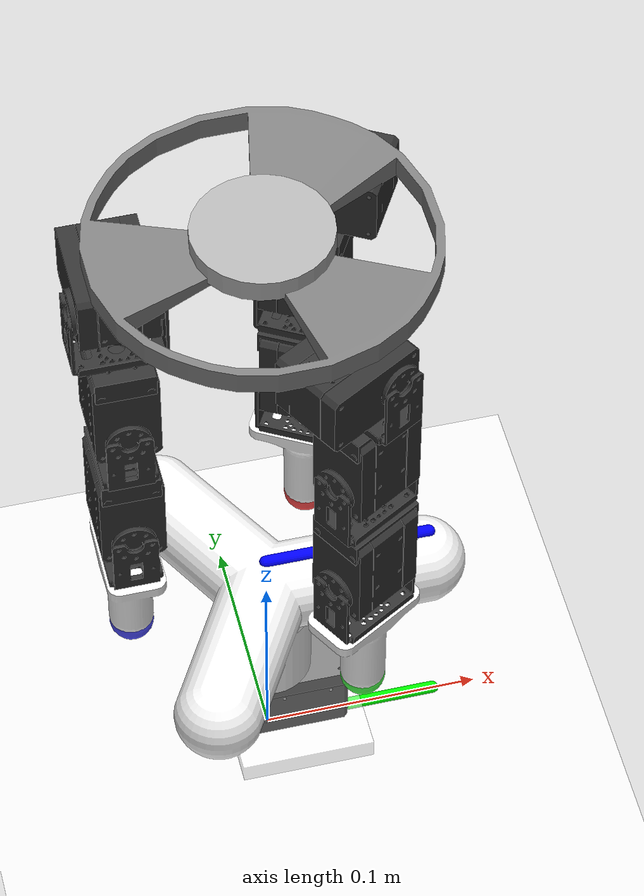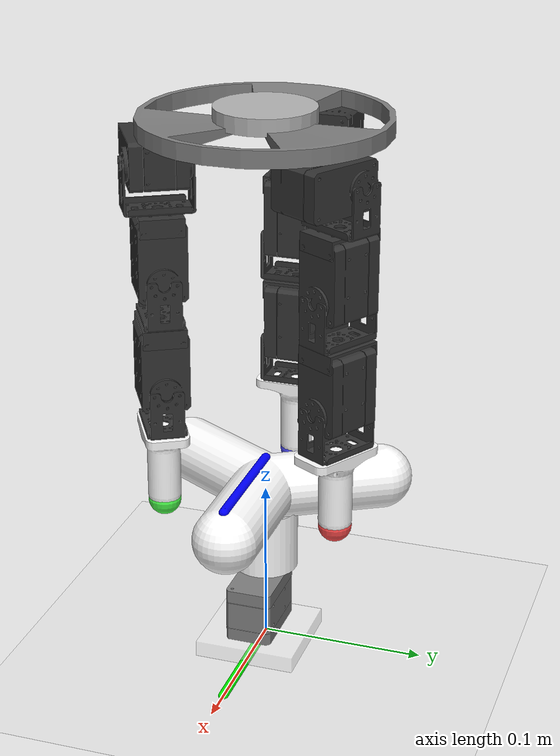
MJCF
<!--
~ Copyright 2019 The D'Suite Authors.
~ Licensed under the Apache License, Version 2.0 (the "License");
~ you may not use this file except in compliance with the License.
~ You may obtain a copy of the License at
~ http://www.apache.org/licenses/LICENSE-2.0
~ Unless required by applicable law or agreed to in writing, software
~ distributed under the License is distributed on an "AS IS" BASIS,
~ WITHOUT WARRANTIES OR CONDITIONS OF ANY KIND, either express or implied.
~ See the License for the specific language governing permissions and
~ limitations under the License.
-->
<?xml version="1.0"?>
<mujoco model="valve3_station">
  <include file="../scenes/basic_scene.xml"/>
  <include file="../dclaw/assets/dependencies3xh.xml"/>
  <include file="../dclaw_stations/assets/dependencies.xml"/>
  <compiler meshdir="." texturedir="."/>
  <worldbody>
    <body name="mount" pos="0 0 .335" euler="0 0 0">
      <geom name="mount" type="cylinder" size="0.03 0.005" rgba=".7 .7 .7 1"/>
      <include file="../dclaw/assets/chain3xh.xml"/>
      <include file="../dclaw/assets/chain3xh_overlay.xml"/>
    </body>
    <body name="valve3" pos="0 0 0.0001">
      <include file="../dclaw_stations/assets/valve3.xml"/>
    </body>
    <body name="target" pos="0 0 0">
      <site name="tmark" type="capsule" size=".003 0.04" pos=".04 0 0" rgba="0 1 0 1" euler="0 1.57 0" group="2"/>
    </body>
  </worldbody>
</mujoco>

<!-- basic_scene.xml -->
<mujocoinclude>
  <asset>
    <texture name="skybox" type="skybox" builtin="gradient" rgb1=".08 .09 .10" rgb2="0 0 0" width="800" height="800" mark="random" markrgb=".8 .8 .8"/>
    <texture name="texplane" type="2d" height="1" width="1" file="../scenes/textures/white_marble_tile2.png"/>
    <material name="MatPlane" reflectance="0.05" texture="texplane" texrepeat="4 4" texuniform="true"/>
  </asset>
  <visual>
    <map fogstart="1.5" fogend="5" force="0.1" znear="0.1"/>
    <quality shadowsize="4096" offsamples="4"/>
  </visual>
  <worldbody>
    <light directional="true" diffuse=".3 .3 .3" specular="0.3 0.3 0.3" pos="-1 -1 1" dir="1 1 -1"/>
    <light directional="true" diffuse=".3 .3 .3" specular="0.3 0.3 0.3" pos="1 -1 1" dir="-1 1 -1"/>
    <light directional="true" diffuse=".3 .3 .3" specular="0.3 0.3 0.3" pos="0 1 1" dir="0 -1 -1"/>
    <geom name="floor" pos="0 0 0" size="5 5 .1" conaffinity="1" contype="1" type="plane" material="MatPlane" condim="3"/>
    <site name="xaxis" pos=".5 0 0" size=".005 .5" type="capsule" rgba="1 0 0 .25" euler="0 1.57 0" group="3"/>
    <site name="yaxis" pos="0 .5 0" size=".005 .5" type="capsule" rgba="0 1 0 .25" euler="1.57 0 0" group="3"/>
  </worldbody>
</mujocoinclude>

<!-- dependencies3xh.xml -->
<mujocoinclude>
  <compiler inertiafromgeom="true" angle="radian"/>
  <option timestep="0.0025" iterations="50" tolerance="1e-10" solver="Newton" jacobian="dense" cone="elliptic"/>
  <asset>
    <mesh name="xh28" file="../dclaw/meshes/xh_base_high_poly.stl" scale=".001 .001 .001"/>
    <mesh name="metal_circle" file="../dclaw/meshes/xh_circle_high_poly.stl" scale=".001 .001 .001"/>
    <mesh name="plastic_finger" file="../dclaw/meshes/xh_finger_tip.stl" scale=".001 .001 .001"/>
    <mesh name="metal_clamping" file="../dclaw/meshes/xh_clamping_high_poly.stl" scale=".001 .001 .001"/>
    <mesh name="metal_clamping_small" file="../dclaw/meshes/xh_clamping_small_high_poly.stl" scale=".001 .001 .001"/>
    <mesh name="plastic_top" file="../dclaw/meshes/xh_white_top_high_poly.stl" scale=".001 .001 .001"/>
    <mesh name="xh28_hull" file="../dclaw/meshes/xh_base_hull.stl" scale=".001 .001 .001"/>
    <mesh name="xh28_hull_top" file="../dclaw/meshes/xh_base_hull_top.stl" scale=".001 .001 .001"/>
  </asset>
  <default>
    <default class="dclaw3xh">
      <joint limited="true" damping=".1" armature="0.001"/>
      <geom contype="1" conaffinity="1" condim="4" group="1" margin="0.0005"/>
      <motor ctrlrange="-1.57 1.57" ctrllimited="true"/>
      <default class="viz_metal_black">
        <geom contype="0" conaffinity="0" group="1" type="mesh" material="metall_black"/>
        <site group="1"/>
      </default>
      <default class="viz_metal_grey">
        <geom contype="0" conaffinity="0" group="1" type="mesh" material="metall_grey"/>
        <site group="1"/>
      </default>
      <default class="viz_plastic">
        <geom contype="0" conaffinity="0" group="1" type="mesh" material="plastic"/>
        <site group="1"/>
      </default>
      <default class="overlay">
        <geom contype="0" conaffinity="0" group="3" type="mesh" material="greenish"/>
        <joint limited="false" damping="100" frictionloss="100" armature="0"/>
        <site group="3"/>
      </default>
      <default class="phy_metal">
        <geom contype="3" conaffinity="3" group="4" type="mesh" rgba="0.0 0.0 1.0 .3"/>
        <site group="4"/>
      </default>
      <default class="phy_plastic">
        <geom contype="3" conaffinity="3" group="4" type="mesh" rgba="0.0 0.0 1.0 .3" friction=".2 0.005 0.0001"/>
        <site group="4"/>
      </default>
    </default>
  </default>
  <asset>

    <material name="metall_black" specular="1" shininess="1" rgba="0.2 0.2 0.2 1.0"/>
    <material name="metall_grey" specular="1" shininess="1" rgba="0.5 0.5 0.5 1.0"/>
    <material name="plastic" specular="0.3" shininess="0" rgba="1 1 1 1"/>
    <material name="greenish" specular="0.0" shininess="0" rgba="0.3 1 0.3 1"/>
  </asset>
  <actuator>
    <position name="FFJ0" kp="2" joint="FFJ0" class="dclaw3xh" ctrlrange="-.45 .45"/>
    <position name="FFJ1" kp="2" joint="FFJ1" class="dclaw3xh"/>
    <position name="FFJ2" kp="2" joint="FFJ2" class="dclaw3xh"/>
    <position name="MFJ0" kp="2" joint="MFJ0" class="dclaw3xh" ctrlrange="-.45 .45"/>
    <position name="MFJ1" kp="2" joint="MFJ1" class="dclaw3xh"/>
    <position name="MFJ2" kp="2" joint="MFJ2" class="dclaw3xh"/>
    <position name="THJ0" kp="2" joint="THJ0" class="dclaw3xh" ctrlrange="-.45 .45"/>
    <position name="THJ1" kp="2" joint="THJ1" class="dclaw3xh"/>
    <position name="THJ2" kp="2" joint="THJ2" class="dclaw3xh"/>
  </actuator>
  <sensor>
    <jointpos name="FFJ0_pos_sensor" joint="FFJ0"/>
    <jointpos name="FFJ1_pos_sensor" joint="FFJ1"/>
    <jointpos name="FFJ2_pos_sensor" joint="FFJ2"/>
    <jointpos name="MFJ0_pos_sensor" joint="MFJ0"/>
    <jointpos name="MFJ1_pos_sensor" joint="MFJ1"/>
    <jointpos name="MFJ2_pos_sensor" joint="MFJ2"/>
    <jointpos name="THJ0_pos_sensor" joint="THJ0"/>
    <jointpos name="THJ1_pos_sensor" joint="THJ1"/>
    <jointpos name="THJ2_pos_sensor" joint="THJ2"/>
    <jointvel name="FFJ0_velocity_sensor" joint="FFJ0"/>
    <jointvel name="FFJ1_velocity_sensor" joint="FFJ1"/>
    <jointvel name="FFJ2_velocity_sensor" joint="FFJ2"/>
    <jointvel name="MFJ0_velocity_sensor" joint="MFJ0"/>
    <jointvel name="MFJ1_velocity_sensor" joint="MFJ1"/>
    <jointvel name="MFJ2_velocity_sensor" joint="MFJ2"/>
    <jointvel name="THJ0_velocity_sensor" joint="THJ0"/>
    <jointvel name="THJ1_velocity_sensor" joint="THJ1"/>
    <jointvel name="THJ2_velocity_sensor" joint="THJ2"/>
  </sensor>
</mujocoinclude>

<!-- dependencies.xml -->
<mujocoinclude>
  <compiler inertiafromgeom="true" angle="radian"/>
  <option timestep="0.0025"/>
  <asset>
    <mesh name="motor" file="../dclaw/meshes/xh_base_high_poly.stl" scale=".001 .001 .001"/>
    <mesh name="motor_hull" file="../dclaw/meshes/xh_base_hull.stl" scale=".001 .001 .001"/>
    <mesh name="valve_4" file="../dclaw_stations/meshes/valve_4_high_poly.stl" scale=".001 .001 .001"/>
    <mesh name="valve_3" file="../dclaw_stations/meshes/valve_3_high_poly.stl" scale=".001 .001 .001"/>
    <mesh name="station_base" file="../dclaw_stations/meshes/station_plastic_base.stl" scale=".001 .001 .001"/>
    <mesh name="station_metal_base" file="../dclaw_stations/meshes/station_metal_base.stl" scale=".001 .001 .001"/>
    <mesh name="station_surface" file="../dclaw_stations/meshes/station_surface.stl" scale=".001 .001 .001"/>
    <mesh name="station_plastic_walls" file="../dclaw_stations/meshes/station_plastic_walls.stl" scale=".001 .001 .001"/>
    <material name="station_metal_grey" specular="1" shininess="1" rgba="0.5 0.5 0.5 1.0"/>
    <material name="plastic_white" specular="0.3" shininess="0" rgba="1 1 1 1"/>
    <material name="plastic_grey" specular="0.3" shininess="0" rgba="0.5 0.5 0.5 1.0"/>
    <material name="plastic_black" specular="0.3" shininess="0" rgba="0.02 0.02 0.02 1.0"/>
    <material name="plastic_transparent" specular="0.3" shininess="0" rgba="1 1 1 0.4"/>
  </asset>
  <default>
    <default class="station">
      <joint limited="true" damping=".1" armature="0.001"/>
      <geom contype="1" conaffinity="1" condim="4" group="2" margin="0.0005"/>
      <site group="2"/>
      <default class="station_viz">
        <geom contype="0" conaffinity="0" type="mesh"/>
        <default class="station_viz_metal_grey">
          <geom material="station_metal_grey"/>
        </default>
        <default class="station_viz_plastic_black">
          <geom material="plastic_black"/>
        </default>
        <default class="station_viz_plastic_grey">
          <geom material="plastic_grey"/>
        </default>
        <default class="station_viz_plastic_white">
          <geom material="plastic_white"/>
        </default>
        <default class="station_viz_plastic_transparent">
          <geom material="plastic_transparent"/>
        </default>
      </default>
      <default class="station_phy">
        <geom contype="1" conaffinity="1" group="4" type="mesh" rgba="0.0 0.0 1.0 .3"/>
        <site group="4"/>
        <default class="station_phy_metal">
          <geom material="station_metal_grey"/>
        </default>
        <default class="station_phy_plastic">
          <geom material="station_metal_grey" friction=".2 0.005 0.0001"/>
        </default>
      </default>
    </default>
  </default>
</mujocoinclude>

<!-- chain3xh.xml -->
<mujocoinclude>
<body name='dClaw' pos='0 0 .0' euler='3.14 0 0.523599' childclass='dclaw3xh'>

  <geom class='viz_metal_grey' mesh="metal_circle" />
  <geom class='phy_metal' type = "cylinder"  pos='0.00 0  0.005'  size = "0.075 0.0065" />
  <site name='S_grasp' pos='0 0 0.24' type='sphere' size='0.01' group='4'/>

  <body name='FFbase' pos='-0.000 -0.062 .010'>
    <geom class='viz_metal_black' mesh="xh28" pos='0 0 0.01425' euler='1.57 0 1.57'/>
    <geom class='phy_metal' mesh="xh28_hull_top" pos='0 0 0.01425' euler='1.57 0 1.57' />

    <body name='FF0' pos='0 0 0.01425' euler='0 0 3.14'>
      <geom class='viz_metal_black' mesh="metal_clamping" pos='0 0 0' euler='0 0 1.57'/>
      <geom class='viz_metal_black' mesh="metal_clamping_small" pos='0 0 0.055'  euler='3.14 0 0' />
      <geom class='viz_metal_black' mesh="xh28" pos='0 0 0.067' euler='1.57 1.57 0' />
      <geom class='phy_metal' mesh="xh28_hull" pos='0 0 0.067' euler='1.57 1.57 0' />

      <geom class='phy_metal' type = "box"  pos='0.0 0  0.028'  size = "0.018 0.014 0.001" />
      <geom class='phy_metal' type = "box" pos='0.019 0 0.033'  size = "0.0008 0.014 0.006" />
      <geom class='phy_metal' type = "box" pos='-0.019 0 0.033'  size = "0.0008 0.014 0.006" />

      <joint name = "FFJ0" type="hinge" pos="0 0 0" axis="0 1 0" limited="false"/>

      <body name='FFL1' pos='0 0 0.0665' >
        <geom class='viz_metal_black' mesh="metal_clamping_small" pos='0 0 0.0555'  euler='3.14 0 0' />
        <geom class='viz_metal_black' mesh="xh28" pos='0 0 0.068' euler='1.57 1.57 0'  />
        <geom class='phy_metal' mesh="xh28_hull" pos='0 0 0.068' euler='1.57 1.57 0' />
        <geom class='phy_metal' type = "box"  pos='0.0 0  0.0265'  size = "0.018 0.014 0.004" />
        <geom class='viz_metal_black' mesh="metal_clamping" pos='0 0 0'  />
        <geom class='phy_metal' type = "box" pos='0.02 0 0.013'  size = "0.0015 0.012 0.016" />
        <geom class='phy_metal' type = "box" pos='-0.02 0 0.013'  size = "0.0015 0.012 0.016" />
        <geom class='phy_metal' type = "box" pos='0.019 0 0.035'  size = "0.0008 0.014 0.0055" />
        <geom class='phy_metal' type = "box" pos='-0.019 0 0.035'  size = "0.0008 0.014 0.0055" />
        <joint name = "FFJ1" type="hinge" pos="0 0 0" axis="1 0 0" limited="true" range="-2.14 2.14" />

        <body name='FFL2' pos='0 0 0.068' >
          <geom class='viz_metal_black' mesh="metal_clamping" pos='0 0 0'  />
          <geom class='phy_metal' type = "box" pos='0.02 0 0.0095'  size = "0.0015 0.012 0.013" />
          <geom class='phy_metal' type = "box" pos='-0.02 0 0.0095'  size = "0.0015 0.012 0.013" />
          <geom class='viz_plastic' mesh="plastic_finger" pos='0 0 0.046'  />
          <geom class='phy_plastic' type = "capsule"  pos='0 0 0.056'  size = "0.01 0.02" />
          <geom class='phy_plastic' type = "box"  pos='0 0 0.028'  size = "0.0245 0.014 0.0055" />
          <joint name = "FFJ2" type="hinge" pos="0 0 0" axis="1 0 0" limited="true" range="-2.14 2.14" />
          <site name='FFtip' type='sphere' pos='0 0 .076' size='0.01' rgba='1 .3 .3 1' />
        </body>
      </body>
    </body>
  </body>

  <body name='MFbase' pos='.0537 0.031 .010' euler='0 0 2.0944'>
    <geom class='viz_metal_black' mesh="xh28" pos='0 0 0.01425' euler='1.57 0 1.57'/>
    <geom class='phy_metal' mesh="xh28_hull_top" pos='0 0 0.01425' euler='1.57 0 1.57' />

    <body name='MF0' pos='0 0 0.01425' euler='0 0 3.14'>
      <geom class='viz_metal_black' mesh="metal_clamping" pos='0 0 0' euler='0 0 1.57'/>
      <geom class='viz_metal_black' mesh="metal_clamping_small" pos='0 0 0.055'  euler='3.14 0 0' />
      <geom class='viz_metal_black' mesh="xh28" pos='0 0 0.067' euler='1.57 1.57 0' />
      <geom class='phy_metal' mesh="xh28_hull" pos='0 0 0.067' euler='1.57 1.57 0' />

      <geom class='phy_metal' type = "box"  pos='0.0 0  0.028'  size = "0.018 0.014 0.001" />
      <geom class='phy_metal' type = "box" pos='0.019 0 0.033'  size = "0.0008 0.014 0.006" />
      <geom class='phy_metal' type = "box" pos='-0.019 0 0.033'  size = "0.0008 0.014 0.006" />

      <joint name = "MFJ0" type="hinge" pos="0 0 0" axis="0 1 0" limited="false"/>

      <body name='MFL1' pos='0 0 0.0665' >
        <geom class='viz_metal_black' mesh="metal_clamping_small" pos='0 0 0.0555'  euler='3.14 0 0' />
        <geom class='viz_metal_black' mesh="xh28" pos='0 0 0.068' euler='1.57 1.57 0'  />
        <geom class='phy_metal' mesh="xh28_hull" pos='0 0 0.068' euler='1.57 1.57 0' />
        <geom class='phy_metal' type = "box"  pos='0.0 0  0.0265'  size = "0.018 0.014 0.004" />
        <geom class='viz_metal_black' mesh="metal_clamping" pos='0 0 0'  />
        <geom class='phy_metal' type = "box" pos='0.02 0 0.013'  size = "0.0015 0.012 0.016" />
        <geom class='phy_metal' type = "box" pos='-0.02 0 0.013'  size = "0.0015 0.012 0.016" />
        <geom class='phy_metal' type = "box" pos='0.019 0 0.035'  size = "0.0008 0.014 0.0055" />
        <geom class='phy_metal' type = "box" pos='-0.019 0 0.035'  size = "0.0008 0.014 0.0055" />
        <joint name = "MFJ1" type="hinge" pos="0 0 0" axis="1 0 0" limited="true" range="-2.14 2.14" />

        <body name='MFL2' pos='0 0 0.068' >
          <geom class='viz_metal_black' mesh="metal_clamping" pos='0 0 0'  />
          <geom class='phy_metal' type = "box" pos='0.02 0 0.0095'  size = "0.0015 0.012 0.013" />
          <geom class='phy_metal' type = "box" pos='-0.02 0 0.0095'  size = "0.0015 0.012 0.013" />
          <geom class='viz_plastic' mesh="plastic_finger" pos='0 0 0.046'  />
          <geom class='phy_plastic' type = "capsule"  pos='0 0 0.056'  size = "0.01 0.02" />
          <geom class='phy_plastic' type = "box"  pos='0 0 0.028'  size = "0.0245 0.014 0.0055" />
          <joint name = "MFJ2" type="hinge" pos="0 0 0" axis="1 0 0" limited="true" range="-2.14 2.14" />
          <site name='MFtip' type='sphere' pos='0 0 .076' size='0.01' rgba='.3 1 .3 1' />
        </body>
      </body>
    </body>
  </body>
  <body name='THbase' pos='-.0537 0.031 .010' euler='0 0 -2.0944'>
    <geom class='viz_metal_black' mesh="xh28" pos='0 0 0.01425' euler='1.57 0 1.57'/>
    <geom class='phy_metal' mesh="xh28_hull_top" pos='0 0 0.01425' euler='1.57 0 1.57' />

    <body name='TH0' pos='0 0 0.01425' euler='0 0 3.14'>
      <geom class='viz_metal_black' mesh="metal_clamping" pos='0 0 0' euler='0 0 1.57'/>
      <geom class='viz_metal_black' mesh="metal_clamping_small" pos='0 0 0.055'  euler='3.14 0 0' />
      <geom class='viz_metal_black' mesh="xh28" pos='0 0 0.067' euler='1.57 1.57 0' />
      <geom class='phy_metal' mesh="xh28_hull" pos='0 0 0.067' euler='1.57 1.57 0' />

      <geom class='phy_metal' type = "box"  pos='0.0 0  0.028'  size = "0.018 0.014 0.001" />
      <geom class='phy_metal' type = "box" pos='0.019 0 0.033'  size = "0.0008 0.014 0.006" />
      <geom class='phy_metal' type = "box" pos='-0.019 0 0.033'  size = "0.0008 0.014 0.006" />

      <joint name = "THJ0" type="hinge" pos="0 0 0" axis="0 1 0" limited="false"/>

      <body name='THL1' pos='0 0 0.0665' >
        <geom class='viz_metal_black' mesh="metal_clamping_small" pos='0 0 0.0555'  euler='3.14 0 0' />
        <geom class='viz_metal_black' mesh="xh28" pos='0 0 0.068' euler='1.57 1.57 0'  />
        <geom class='phy_metal' mesh="xh28_hull" pos='0 0 0.068' euler='1.57 1.57 0' />
        <geom class='phy_metal' type = "box"  pos='0.0 0  0.0265'  size = "0.018 0.014 0.004" />
        <geom class='viz_metal_black' mesh="metal_clamping" pos='0 0 0'  />
        <geom class='phy_metal' type = "box" pos='0.02 0 0.013'  size = "0.0015 0.012 0.016" />
        <geom class='phy_metal' type = "box" pos='-0.02 0 0.013'  size = "0.0015 0.012 0.016" />
        <geom class='phy_metal' type = "box" pos='0.019 0 0.035'  size = "0.0008 0.014 0.0055" />
        <geom class='phy_metal' type = "box" pos='-0.019 0 0.035'  size = "0.0008 0.014 0.0055" />
        <joint name = "THJ1" type="hinge" pos="0 0 0" axis="1 0 0" limited="true" range="-2.14 2.14" />

        <body name='THL2' pos='0 0 0.068' >
          <geom class='viz_metal_black' mesh="metal_clamping" pos='0 0 0'  />
          <geom class='phy_metal' type = "box" pos='0.02 0 0.0095'  size = "0.0015 0.012 0.013" />
          <geom class='phy_metal' type = "box" pos='-0.02 0 0.0095'  size = "0.0015 0.012 0.013" />
          <geom class='viz_plastic' mesh="plastic_finger" pos='0 0 0.046'  />
          <geom class='phy_plastic' type = "capsule"  pos='0 0 0.056'  size = "0.01 0.02" />
          <geom class='phy_plastic' type = "box"  pos='0 0 0.028'  size = "0.0245 0.014 0.0055" />
          <joint name = "THJ2" type="hinge" pos="0 0 0" axis="1 0 0" limited="true" range="-2.14 2.14" />
          <site name='THtip' type='sphere' pos='0 0 .076' size='0.01' rgba='.3 .3 1 1' />
        </body>
      </body>
    </body>
  </body>
</body>
</mujocoinclude>

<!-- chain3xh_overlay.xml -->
<mujocoinclude>
  <body name="_dclaw" pos="0 0 0" euler="3.14 0 0.523599" childclass="overlay">
    <geom mesh="metal_circle"/>
    <body name="_FFtop" pos="-0.001 -0.052 .016">
      <geom mesh="plastic_top" pos="0 0 0"/>
      <body name="_FFbase" pos="0 -0.01 0.020" euler="0 0 3.14">
        <geom mesh="xh28" pos="0 0 0"/>
        <body name="_FF0" pos="0 0 0.058">
          <geom mesh="xh28" pos="0 0 0" euler="1.57 1.57 0"/>
          <geom mesh="metal_clamping_small" pos="0 0 -0.012" euler="3.14 0 0"/>
          <joint name="_FFJ0" type="hinge" pos="0 0 0" axis="0 0 1"/>
          <body name="_FFL1" pos="0 0 0">
            <geom mesh="xh28" pos="0 0 0.068" euler="1.57 1.57 0"/>
            <geom mesh="metal_clamping_small" pos="0 0 0.0555" euler="3.14 0 0"/>
            <geom mesh="metal_clamping" pos="0 0 0"/>
            <joint name="_FFJ1" type="hinge" pos="0 0 0" axis="1 0 0" limited="true" range="-2.14 2.14"/>
            <body name="_FFL2" pos="0 0 0.068">
              <geom mesh="metal_clamping" pos="0 0 0"/>
              <geom mesh="plastic_finger" pos="0 0 0.046"/>
              <joint name="_FFJ2" type="hinge" pos="0 0 0" axis="1 0 0" limited="true" range="-2.14 2.14"/>
              <site name="_FFtip" type="sphere" pos="0 0 .076" size="0.01" rgba="1 .3 .3 1"/>
            </body>
          </body>
        </body>
      </body>
    </body>
    <body name="_MFtop" pos=".044 0.025  0.016" euler="0 0 2.0944">
      <geom mesh="plastic_top" pos="0 0 0"/>
      <body name="_MFbase" pos="0 -0.01 0.020" euler="0 0 3.14">
        <geom mesh="xh28" pos="0 0 0"/>
        <body name="_MF0" pos="0 0 0.058">
          <geom mesh="xh28" pos="0 0 0" euler="1.57 1.57 0"/>
          <geom mesh="metal_clamping_small" pos="0 0 -0.012" euler="3.14 0 0"/>
          <joint name="_MFJ0" type="hinge" pos="0 0 0" axis="0 0 1"/>
          <body name="_MFL1" pos="0 0 0">
            <geom mesh="xh28" pos="0 0 0.068" euler="1.57 1.57 0"/>
            <geom mesh="metal_clamping_small" pos="0 0 0.0555" euler="3.14 0 0"/>
            <geom mesh="metal_clamping" pos="0 0 0"/>
            <joint name="_MFJ1" type="hinge" pos="0 0 0" axis="1 0 0" limited="true" range="-2.14 2.14"/>
            <body name="_MFL2" pos="0 0 0.068">
              <geom mesh="metal_clamping" pos="0 0 0"/>
              <geom mesh="plastic_finger" pos="0 0 0.046"/>
              <joint name="_MFJ2" type="hinge" pos="0 0 0" axis="1 0 0" limited="true" range="-2.14 2.14"/>
              <site name="_MFtip" type="sphere" pos="0 0 .076" size="0.01" rgba=".3 1 .3 1"/>
            </body>
          </body>
        </body>
      </body>
    </body>
    <body name="_TFtop" pos="-.044 0.025  0.016" euler="0 0 -2.0944">
      <geom mesh="plastic_top" pos="0 0 0"/>
      <body name="_THbase" pos="0 -0.01 0.020" euler="0 0 3.14">
        <geom mesh="xh28" pos="0 0 0"/>
        <body name="_TH0" pos="0 0 0.058">
          <geom mesh="xh28" pos="0 0 0" euler="1.57 1.57 0"/>
          <geom mesh="metal_clamping_small" pos="0 0 -0.012" euler="3.14 0 0"/>
          <joint name="_THJ0" type="hinge" pos="0 0 0" axis="0 0 1"/>
          <body name="_THL1" pos="0 0 0">
            <geom mesh="xh28" pos="0 0 0.068" euler="1.57 1.57 0"/>
            <geom mesh="metal_clamping_small" pos="0 0 0.0555" euler="3.14 0 0"/>
            <geom mesh="metal_clamping" pos="0 0 0"/>
            <joint name="_THJ1" type="hinge" pos="0 0 0" axis="1 0 0" limited="true" range="-2.14 2.14"/>
            <body name="_THL2" pos="0 0 0.068">
              <geom mesh="metal_clamping" pos="0 0 0"/>
              <geom mesh="plastic_finger" pos="0 0 0.046"/>
              <joint name="_THJ2" type="hinge" pos="0 0 0" axis="1 0 0" limited="true" range="-2.14 2.14"/>
              <site name="_THtip" type="sphere" pos="0 0 .076" size="0.01" rgba=".3 .3 1 1"/>
            </body>
          </body>
        </body>
      </body>
    </body>
  </body>
</mujocoinclude>

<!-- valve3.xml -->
<mujocoinclude name="valve3">
  <body name="valve_base" pos=".0 0.00 0.01" euler="0 0 0" childclass="station">
    <geom class="station_viz_plastic_transparent" type="box" size=".031 .031 .005" pos=".0125 0 -.005"/>
    <geom class="station_viz_metal_grey" mesh="motor" pos="0 0 0.018" euler="0 0 1.57"/>
    <geom class="station_phy_metal" mesh="motor_hull" pos="0 0 0.018" euler="0 0 1.57"/>
    <body name="valve" pos="0 0 0.038" euler="0 0 -1.57">
      <geom class="station_viz_plastic_white" mesh="valve_3" pos="0 0 0"/>
      <geom class="station_phy_plastic" type="capsule" pos="0.0 0.038 0.054" size="0.021 0.035" euler="1.57 0 0"/>
      <geom class="station_phy_plastic" type="capsule" pos="-0.034 -0.019 0.054" size="0.021 0.035" euler="1.57 2.0944 0"/>
      <geom class="station_phy_plastic" type="capsule" pos="0.034 -0.019 0.054" size="0.021 0.035" euler="1.57 4.1887 0"/>
      <geom class="station_phy_plastic" type="cylinder" pos="0.0 0.0 0.027" size="0.02 0.0275"/>
      <site name="valve_mark" type="capsule" size=".003 0.0375" pos="0 .0375 .073" rgba="0 0 1 1" euler="1.57 0 0"/>
      <joint name="valve_OBJRx" pos="0 0 0" type="hinge" axis="0 0 1" range="-6.28 6.28" damping=".1" limited="true"/>
    </body>
  </body>
</mujocoinclude>
